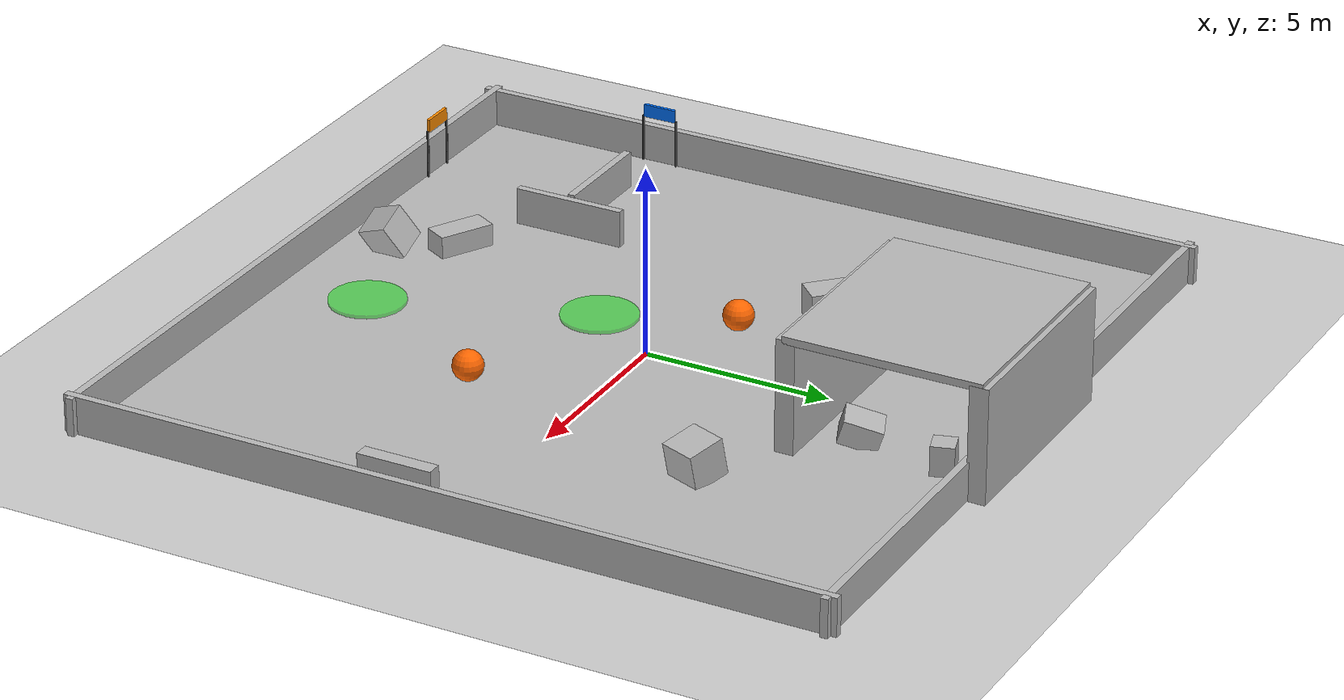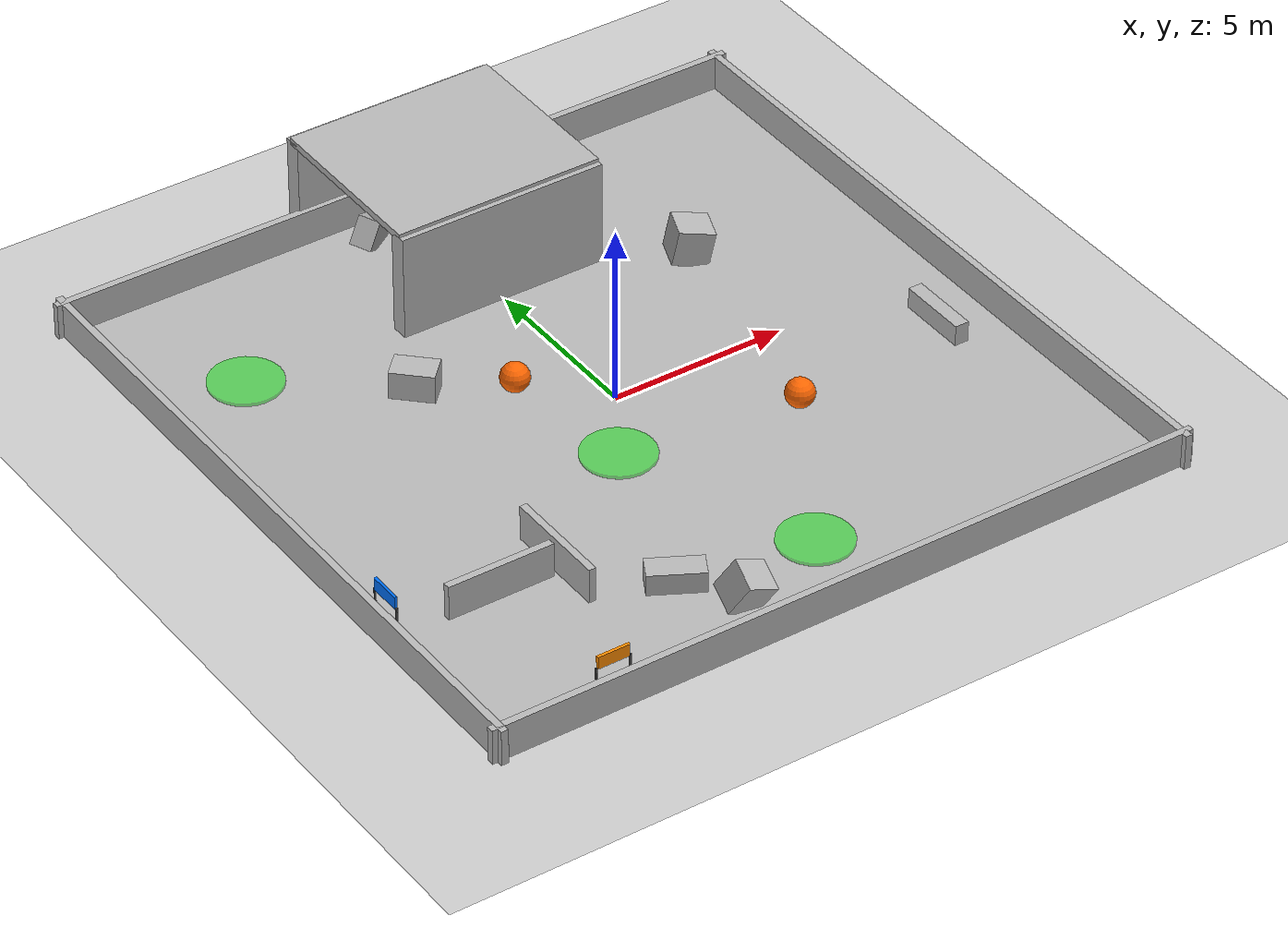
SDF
<sdf version="1.6">
 <world name="hazard_world">
  <physics type="ode">
   <real_time_update_rate>1000.0</real_time_update_rate>
   <max_step_size>0.001</max_step_size>
   <real_time_factor>0</real_time_factor>
   <ode><solver><type>quick</type><iters>70</iters><sor>1.3</sor></solver></ode>
  </physics>
  <scene>
   <ambient>0.4 0.2 0.1 1</ambient>
   <background>0.7 0.4 0.3 1</background>
   <shadows>false</shadows>
   <sky>
    <time>18.5</time>
    <sunrise>6.0</sunrise>
    <sunset>19.0</sunset>
    <clouds><speed>0.6</speed><humidity>0.5</humidity></clouds>
   </sky>
  </scene>
  <light name="sun" type="directional">
   <pose>0 0 10 0.8 0 0</pose>
   <diffuse>0.9 0.5 0.2 1</diffuse>
   <specular>0.2 0.2 0.2 1</specular>
   <direction>0 0 -1</direction>
   <cast_shadows>false</cast_shadows>
  </light>
  <light name="tunnel_lamp" type="point">
   <pose>0 7.8 2.95 0 0 0</pose>
   <diffuse>1.0 0.95 0.6 1</diffuse>
   <specular>0.4 0.4 0.4 1</specular>
   <attenuation>
    <range>8.0</range>
    <constant>0.3</constant>
    <linear>0.1</linear>
    <quadratic>0.05</quadratic>
   </attenuation>
   <cast_shadows>false</cast_shadows>
   <visualize>false</visualize>
  </light>
  <model name="outer_ground">
   <static>true</static>
   <link name="link">
    <collision name="collision">
     <geometry><plane><normal>0 0 1</normal><size>100 100</size></plane></geometry>
     <surface><friction><ode><mu>1.0</mu><mu2>1.0</mu2></ode></friction></surface>
    </collision>
    <visual name="visual">
     <cast_shadows>false</cast_shadows>
     <geometry><plane><normal>0 0 1</normal><size>100 100</size></plane></geometry>
     <material>
      <script>
       <uri>file:///home/hashie/catkin_ws/src/com760cw2_group6/media/materials/scripts</uri>
       <name>Pavement/Tile</name>
      </script>
     </material>
    </visual>
   </link>
  </model>
  <model name="cracked_ground">
   <static>true</static>
   <link name="link">
    <visual name="visual">
     <cast_shadows>false</cast_shadows>
     <pose>0 0 0.001 0 0 0</pose>
     <geometry><plane><normal>0 0 1</normal><size>20 20</size></plane></geometry>
     <material>
      <script>
       <uri>file:///home/hashie/catkin_ws/src/com760cw2_group6/media/materials/scripts</uri>
       <name>Apocalypse/GroundTexture</name>
      </script>
     </material>
    </visual>
   </link>
  </model>
  <model name="grid_border">
   <static>true</static>
   <link name="link">
    <collision name="n_c">
     <pose>0.0000 10.0 0.5 0 0 0</pose>
     <geometry><box><size>20.5000 0.2 1.0</size></box></geometry>
    </collision>
    <visual name="n_v">
     <pose>0.0000 10.0 0.5 0 0 0</pose>
     <cast_shadows>false</cast_shadows>
     <geometry><box><size>20.5000 0.2 1.0</size></box></geometry>
     <material>
      <script>
       <uri>file:///home/hashie/catkin_ws/src/com760cw2_group6/media/materials/scripts</uri>
       <name>Apocalypse/StoneTexture</name>
      </script>
     </material>
    </visual>
    <collision name="s_c">
     <pose>0.0000 -10.0 0.5 0 0 0</pose>
     <geometry><box><size>20.5000 0.2 1.0</size></box></geometry>
    </collision>
    <visual name="s_v">
     <pose>0.0000 -10.0 0.5 0 0 0</pose>
     <cast_shadows>false</cast_shadows>
     <geometry><box><size>20.5000 0.2 1.0</size></box></geometry>
     <material>
      <script>
       <uri>file:///home/hashie/catkin_ws/src/com760cw2_group6/media/materials/scripts</uri>
       <name>Apocalypse/StoneTexture</name>
      </script>
     </material>
    </visual>
    <collision name="e_c">
     <pose>10.0000 0.0 0.5 0 0 0</pose>
     <geometry><box><size>0.2000 20.5 1.0</size></box></geometry>
    </collision>
    <visual name="e_v">
     <pose>10.0000 0.0 0.5 0 0 0</pose>
     <cast_shadows>false</cast_shadows>
     <geometry><box><size>0.2000 20.5 1.0</size></box></geometry>
     <material>
      <script>
       <uri>file:///home/hashie/catkin_ws/src/com760cw2_group6/media/materials/scripts</uri>
       <name>Apocalypse/StoneTexture</name>
      </script>
     </material>
    </visual>
    <collision name="w_c">
     <pose>-10.0000 0.0 0.5 0 0 0</pose>
     <geometry><box><size>0.2000 20.5 1.0</size></box></geometry>
    </collision>
    <visual name="w_v">
     <pose>-10.0000 0.0 0.5 0 0 0</pose>
     <cast_shadows>false</cast_shadows>
     <geometry><box><size>0.2000 20.5 1.0</size></box></geometry>
     <material>
      <script>
       <uri>file:///home/hashie/catkin_ws/src/com760cw2_group6/media/materials/scripts</uri>
       <name>Apocalypse/StoneTexture</name>
      </script>
     </material>
    </visual>
   </link>
  </model>
  <model name="path_tunnel">
   <static>true</static>
   <pose>0.0 7.8 -0.2 0 0 0</pose>
   <link name="link">
    <collision name="wall_l">
     <pose>0 -2.5 1.6 0 0 0</pose>
     <geometry><box><size>6.0 0.5 3.2</size></box></geometry>
    </collision>
    <visual name="v_l">
     <cast_shadows>false</cast_shadows>
     <pose>0 -2.5 1.6 0 0 0</pose>
     <geometry><box><size>6.0 0.5 3.2</size></box></geometry>
     <material>
      <script>
       <uri>file:///home/hashie/catkin_ws/src/com760cw2_group6/media/materials/scripts</uri>
       <name>Apocalypse/StoneTexture</name>
      </script>
     </material>
    </visual>
    <collision name="wall_r">
     <pose>0 2.5 1.6 0 0 0</pose>
     <geometry><box><size>6.0 0.5 3.2</size></box></geometry>
    </collision>
    <visual name="v_r">
     <cast_shadows>false</cast_shadows>
     <pose>0 2.5 1.6 0 0 0</pose>
     <geometry><box><size>6.0 0.5 3.2</size></box></geometry>
     <material>
      <script>
       <uri>file:///home/hashie/catkin_ws/src/com760cw2_group6/media/materials/scripts</uri>
       <name>Apocalypse/StoneTexture</name>
      </script>
     </material>
    </visual>
    <collision name="roof">
     <pose>0 0 3.2 0 0 0</pose>
     <geometry><box><size>6.0 5.2 0.2</size></box></geometry>
    </collision>
    <visual name="v_roof">
     <cast_shadows>false</cast_shadows>
     <pose>0 0 3.2 0 0 0</pose>
     <geometry><box><size>6.0 5.2 0.2</size></box></geometry>
     <material>
      <script>
       <uri>file:///home/hashie/catkin_ws/src/com760cw2_group6/media/materials/scripts</uri>
       <name>Apocalypse/StoneTexture</name>
      </script>
     </material>
    </visual>
    <collision name="c_debris_1">
     <pose>-1.5 1.2 0.6 0.2 0.5 0.7</pose>
     <geometry><box><size>1.2 0.6 0.8</size></box></geometry>
     <surface><friction><ode><mu>100</mu><mu2>50</mu2></ode></friction></surface>
    </collision>
    <visual name="v_debris_1">
     <cast_shadows>false</cast_shadows>
     <pose>-1.5 1.2 0.6 0.2 0.5 0.7</pose>
     <geometry><box><size>1.2 0.6 0.8</size></box></geometry>
     <material>
      <script>
       <uri>file:///home/hashie/catkin_ws/src/com760cw2_group6/media/materials/scripts</uri>
       <name>Apocalypse/StoneTexture</name>
      </script>
     </material>
    </visual>
    <collision name="c_debris_2">
     <pose>1.5 -1.2 0.5 -0.3 0 0.4</pose>
     <geometry><box><size>1.0 1.0 0.6</size></box></geometry>
     <surface><friction><ode><mu>100</mu><mu2>50</mu2></ode></friction></surface>
    </collision>
    <visual name="v_debris_2">
     <cast_shadows>false</cast_shadows>
     <pose>1.5 -1.2 0.5 -0.3 0 0.4</pose>
     <geometry><box><size>1.0 1.0 0.6</size></box></geometry>
     <material>
      <script>
       <uri>file:///home/hashie/catkin_ws/src/com760cw2_group6/media/materials/scripts</uri>
       <name>Apocalypse/StoneTexture</name>
      </script>
     </material>
    </visual>
   </link>
  </model>
  <model name="random_stone_1">
   <static>true</static>
   <pose>-4.0 3.0 0.4 0.0 0.0 0.8</pose>
   <link name="link">
    <collision name="c">
     <geometry><box><size>0.8 1.2 0.8</size></box></geometry>
     <surface>
      <friction><ode><mu>100</mu><mu2>50</mu2></ode></friction>
      <contact><ode><kp>1e+06</kp><kd>1.0</kd></ode></contact>
     </surface>
    </collision>
    <visual name="v">
     <cast_shadows>false</cast_shadows>
     <geometry><box><size>0.8 1.2 0.8</size></box></geometry>
     <material>
      <script>
       <uri>file:///home/hashie/catkin_ws/src/com760cw2_group6/media/materials/scripts</uri>
       <name>Apocalypse/StoneTexture</name>
      </script>
     </material>
    </visual>
   </link>
  </model>
  <model name="random_stone_2">
   <static>true</static>
   <pose>5.0 4.0 0.5 0.2 0.0 1.2</pose>
   <link name="link">
    <collision name="c">
     <geometry><box><size>1.0 1.0 1.0</size></box></geometry>
     <surface>
      <friction><ode><mu>100</mu><mu2>50</mu2></ode></friction>
      <contact><ode><kp>1e+06</kp><kd>1.0</kd></ode></contact>
     </surface>
    </collision>
    <visual name="v">
     <cast_shadows>false</cast_shadows>
     <geometry><box><size>1.0 1.0 1.0</size></box></geometry>
     <material>
      <script>
       <uri>file:///home/hashie/catkin_ws/src/com760cw2_group6/media/materials/scripts</uri>
       <name>Apocalypse/StoneTexture</name>
      </script>
     </material>
    </visual>
   </link>
  </model>
  <model name="random_stone_3">
   <static>true</static>
   <pose>-3.0 -7.0 0.3 0.0 0.0 -0.5</pose>
   <link name="link">
    <collision name="c">
     <geometry><box><size>1.5 0.7 0.6</size></box></geometry>
     <surface>
      <friction><ode><mu>100</mu><mu2>50</mu2></ode></friction>
      <contact><ode><kp>1e+06</kp><kd>1.0</kd></ode></contact>
     </surface>
    </collision>
    <visual name="v">
     <cast_shadows>false</cast_shadows>
     <geometry><box><size>1.5 0.7 0.6</size></box></geometry>
     <material>
      <script>
       <uri>file:///home/hashie/catkin_ws/src/com760cw2_group6/media/materials/scripts</uri>
       <name>Apocalypse/StoneTexture</name>
      </script>
     </material>
    </visual>
   </link>
  </model>
  <model name="random_stone_4">
   <static>true</static>
   <pose>2.0 9.0 0.4 0.0 0.0 0.3</pose>
   <link name="link">
    <collision name="c">
     <geometry><box><size>0.6 0.6 0.8</size></box></geometry>
     <surface>
      <friction><ode><mu>100</mu><mu2>50</mu2></ode></friction>
      <contact><ode><kp>1e+06</kp><kd>1.0</kd></ode></contact>
     </surface>
    </collision>
    <visual name="v">
     <cast_shadows>false</cast_shadows>
     <geometry><box><size>0.6 0.6 0.8</size></box></geometry>
     <material>
      <script>
       <uri>file:///home/hashie/catkin_ws/src/com760cw2_group6/media/materials/scripts</uri>
       <name>Apocalypse/StoneTexture</name>
      </script>
     </material>
    </visual>
   </link>
  </model>
  <model name="random_stone_5">
   <static>true</static>
   <pose>-2.0 -8.5 0.5 0.4 0.4 0.0</pose>
   <link name="link">
    <collision name="c">
     <geometry><box><size>0.9 0.9 1.0</size></box></geometry>
     <surface>
      <friction><ode><mu>100</mu><mu2>50</mu2></ode></friction>
      <contact><ode><kp>1e+06</kp><kd>1.0</kd></ode></contact>
     </surface>
    </collision>
    <visual name="v">
     <cast_shadows>false</cast_shadows>
     <geometry><box><size>0.9 0.9 1.0</size></box></geometry>
     <material>
      <script>
       <uri>file:///home/hashie/catkin_ws/src/com760cw2_group6/media/materials/scripts</uri>
       <name>Apocalypse/StoneTexture</name>
      </script>
     </material>
    </visual>
   </link>
  </model>
  <model name="random_stone_6">
   <static>true</static>
   <pose>8.5 -2.0 0.3 0.0 0.0 1.57</pose>
   <link name="link">
    <collision name="c">
     <geometry><box><size>2.0 0.4 0.6</size></box></geometry>
     <surface>
      <friction><ode><mu>100</mu><mu2>50</mu2></ode></friction>
      <contact><ode><kp>1e+06</kp><kd>1.0</kd></ode></contact>
     </surface>
    </collision>
    <visual name="v">
     <cast_shadows>false</cast_shadows>
     <geometry><box><size>2.0 0.4 0.6</size></box></geometry>
     <material>
      <script>
       <uri>file:///home/hashie/catkin_ws/src/com760cw2_group6/media/materials/scripts</uri>
       <name>Apocalypse/StoneTexture</name>
      </script>
     </material>
    </visual>
   </link>
  </model>
  <model name="entrance_sign_bot0">
   <static>true</static>
   <pose>-9.8500 -4.9220 0 0 0 0</pose>
   <link name="link">
    <visual name="post_l">
     <pose>0 -0.480 0.65 0 0 0</pose>
     <cast_shadows>false</cast_shadows>
     <geometry><cylinder><radius>0.03</radius><length>1.3</length></cylinder></geometry>
     <material><ambient>0.25 0.25 0.25 1</ambient><diffuse>0.25 0.25 0.25 1</diffuse></material>
    </visual>
    <visual name="post_r">
     <pose>0 0.480 0.65 0 0 0</pose>
     <cast_shadows>false</cast_shadows>
     <geometry><cylinder><radius>0.03</radius><length>1.3</length></cylinder></geometry>
     <material><ambient>0.25 0.25 0.25 1</ambient><diffuse>0.25 0.25 0.25 1</diffuse></material>
    </visual>
    <visual name="board">
     <pose>0 0 1.45 0 0 0</pose>
     <cast_shadows>false</cast_shadows>
     <geometry><box><size>0.08 0.9 0.35</size></box></geometry>
     <material>
      <ambient>0.00 0.45 1.00 1</ambient>
      <diffuse>0.00 0.45 1.00 1</diffuse>
      <emissive>0.00 0.11 0.25 1</emissive>
     </material>
    </visual>
   </link>
  </model>
  <model name="entrance_sign_bot1">
   <static>true</static>
   <pose>-6.7194 -9.8500 0 0 0 0</pose>
   <link name="link">
    <visual name="post_l">
     <pose>-0.480 0 0.65 0 0 0</pose>
     <cast_shadows>false</cast_shadows>
     <geometry><cylinder><radius>0.03</radius><length>1.3</length></cylinder></geometry>
     <material><ambient>0.25 0.25 0.25 1</ambient><diffuse>0.25 0.25 0.25 1</diffuse></material>
    </visual>
    <visual name="post_r">
     <pose>0.480 0 0.65 0 0 0</pose>
     <cast_shadows>false</cast_shadows>
     <geometry><cylinder><radius>0.03</radius><length>1.3</length></cylinder></geometry>
     <material><ambient>0.25 0.25 0.25 1</ambient><diffuse>0.25 0.25 0.25 1</diffuse></material>
    </visual>
    <visual name="board">
     <pose>0 0 1.45 0 0 0</pose>
     <cast_shadows>false</cast_shadows>
     <geometry><box><size>0.9 0.08 0.35</size></box></geometry>
     <material>
      <ambient>1.00 0.55 0.00 1</ambient>
      <diffuse>1.00 0.55 0.00 1</diffuse>
      <emissive>0.25 0.14 0.00 1</emissive>
     </material>
    </visual>
   </link>
  </model>
  <model name="fire_1">
   <static>true</static>
   <pose>-2.00 1.50 0.55 0 0 0</pose>
   <link name="link">
    <visual name="fireball_vis">
     <cast_shadows>false</cast_shadows>
     <geometry><sphere><radius>0.40</radius></sphere></geometry>
     <material>
      <ambient>1.0 0.5 0.0 1</ambient>
      <diffuse>1.0 0.4 0.0 1</diffuse>
      <emissive>0.9 0.3 0.0 1</emissive>
      <script>
       <uri>file:///home/hashie/catkin_ws/src/com760cw2_group6/media/materials/scripts</uri>
       <name>Apocalypse/FireballTexture</name>
      </script>
     </material>
    </visual>
    <collision name="fireball_col">
     <geometry><sphere><radius>0.40</radius></sphere></geometry>
     <surface><contact><collide_bitmask>0x01</collide_bitmask></contact></surface>
    </collision>
    <sensor name="fire_1_contact" type="contact">
     <always_on>true</always_on>
     <update_rate>20</update_rate>
     <contact><collision>link::fireball_col</collision></contact>
     <plugin name="fire_1_plugin" filename="libgazebo_ros_bumper.so">
      <bumperTopicName>/fire_1/contact</bumperTopicName>
      <frameName>world</frameName>
     </plugin>
    </sensor>
   </link>
  </model>
  <light name="fire_1_glow" type="point">
   <pose>-2.00 1.50 0.55 0 0 0</pose>
   <diffuse>1.0 0.45 0.05 1</diffuse>
   <specular>0.4 0.15 0.0 1</specular>
   <attenuation>
    <range>6.0</range>
    <constant>0.25</constant>
    <linear>0.12</linear>
    <quadratic>0.04</quadratic>
   </attenuation>
   <cast_shadows>false</cast_shadows>
   <visualize>false</visualize>
  </light>
  <model name="fire_2">
   <static>true</static>
   <pose>3.50 -3.00 0.55 0 0 0</pose>
   <link name="link">
    <visual name="fireball_vis">
     <cast_shadows>false</cast_shadows>
     <geometry><sphere><radius>0.40</radius></sphere></geometry>
     <material>
      <ambient>1.0 0.5 0.0 1</ambient>
      <diffuse>1.0 0.4 0.0 1</diffuse>
      <emissive>0.9 0.3 0.0 1</emissive>
      <script>
       <uri>file:///home/hashie/catkin_ws/src/com760cw2_group6/media/materials/scripts</uri>
       <name>Apocalypse/FireballTexture</name>
      </script>
     </material>
    </visual>
    <collision name="fireball_col">
     <geometry><sphere><radius>0.40</radius></sphere></geometry>
     <surface><contact><collide_bitmask>0x01</collide_bitmask></contact></surface>
    </collision>
    <sensor name="fire_2_contact" type="contact">
     <always_on>true</always_on>
     <update_rate>20</update_rate>
     <contact><collision>link::fireball_col</collision></contact>
     <plugin name="fire_2_plugin" filename="libgazebo_ros_bumper.so">
      <bumperTopicName>/fire_2/contact</bumperTopicName>
      <frameName>world</frameName>
     </plugin>
    </sensor>
   </link>
  </model>
  <light name="fire_2_glow" type="point">
   <pose>3.50 -3.00 0.55 0 0 0</pose>
   <diffuse>1.0 0.45 0.05 1</diffuse>
   <specular>0.4 0.15 0.0 1</specular>
   <attenuation>
    <range>6.0</range>
    <constant>0.25</constant>
    <linear>0.12</linear>
    <quadratic>0.04</quadratic>
   </attenuation>
   <cast_shadows>false</cast_shadows>
   <visualize>false</visualize>
  </light>
  <model name="entry_obstacle_bot0">
   <static>true</static>
   <pose>-5.0000 -4.9220 0.50 0 0 0</pose>
   <link name="link">
    <collision name="c">
     <geometry><box><size>0.20 3.00 1.00</size></box></geometry>
     <surface><friction><ode><mu>100</mu><mu2>50</mu2></ode></friction></surface>
    </collision>
    <visual name="v">
     <cast_shadows>false</cast_shadows>
     <geometry><box><size>0.20 3.00 1.00</size></box></geometry>
     <material>
      <script>
       <uri>file:///home/hashie/catkin_ws/src/com760cw2_group6/media/materials/scripts</uri>
       <name>Apocalypse/StoneTexture</name>
      </script>
     </material>
    </visual>
   </link>
  </model>
  <model name="entry_obstacle_bot1">
   <static>true</static>
   <pose>-6.7194 -5.0000 0.50 0 0 0</pose>
   <link name="link">
    <collision name="c">
     <geometry><box><size>3.00 0.20 1.00</size></box></geometry>
     <surface><friction><ode><mu>100</mu><mu2>50</mu2></ode></friction></surface>
    </collision>
    <visual name="v">
     <cast_shadows>false</cast_shadows>
     <geometry><box><size>3.00 0.20 1.00</size></box></geometry>
     <material>
      <script>
       <uri>file:///home/hashie/catkin_ws/src/com760cw2_group6/media/materials/scripts</uri>
       <name>Apocalypse/StoneTexture</name>
      </script>
     </material>
    </visual>
   </link>
  </model>
  <model name="gas_zone_1">
   <static>true</static>
   <pose>0.77 -7.49 0.05 0 0 0</pose>
   <link name="link">
    <visual name="v">
     <cast_shadows>false</cast_shadows>
     <geometry><cylinder><radius>1.0</radius><length>0.1</length></cylinder></geometry>
     <material>
      <ambient>0 0.8 0 0.5</ambient>
      <diffuse>0 0.9 0 0.5</diffuse>
      <emissive>0 0.4 0 1</emissive>
     </material>
    </visual>
    <collision name="c">
     <geometry><cylinder><radius>1.0</radius><length>0.1</length></cylinder></geometry>
     <surface>
      <contact><collide_bitmask>0x0000</collide_bitmask></contact>
      <friction><ode><mu>0</mu><mu2>0</mu2></ode></friction>
     </surface>
    </collision>
    <sensor name="contact_1" type="contact">
     <always_on>true</always_on>
     <update_rate>20</update_rate>
     <contact><collision>link::c</collision></contact>
     <plugin name="bumper_1" filename="libgazebo_ros_bumper.so">
      <bumperTopicName>/gas_1/contact</bumperTopicName>
      <frameName>world</frameName>
     </plugin>
    </sensor>
   </link>
  </model>
  <model name="gas_zone_2">
   <static>true</static>
   <pose>-7.31 5.67 0.05 0 0 0</pose>
   <link name="link">
    <visual name="v">
     <cast_shadows>false</cast_shadows>
     <geometry><cylinder><radius>1.0</radius><length>0.1</length></cylinder></geometry>
     <material>
      <ambient>0 0.8 0 0.5</ambient>
      <diffuse>0 0.9 0 0.5</diffuse>
      <emissive>0 0.4 0 1</emissive>
     </material>
    </visual>
    <collision name="c">
     <geometry><cylinder><radius>1.0</radius><length>0.1</length></cylinder></geometry>
     <surface>
      <contact><collide_bitmask>0x0000</collide_bitmask></contact>
      <friction><ode><mu>0</mu><mu2>0</mu2></ode></friction>
     </surface>
    </collision>
    <sensor name="contact_2" type="contact">
     <always_on>true</always_on>
     <update_rate>20</update_rate>
     <contact><collision>link::c</collision></contact>
     <plugin name="bumper_2" filename="libgazebo_ros_bumper.so">
      <bumperTopicName>/gas_2/contact</bumperTopicName>
      <frameName>world</frameName>
     </plugin>
    </sensor>
   </link>
  </model>
  <model name="gas_zone_3">
   <static>true</static>
   <pose>-1.25 -1.99 0.05 0 0 0</pose>
   <link name="link">
    <visual name="v">
     <cast_shadows>false</cast_shadows>
     <geometry><cylinder><radius>1.0</radius><length>0.1</length></cylinder></geometry>
     <material>
      <ambient>0 0.8 0 0.5</ambient>
      <diffuse>0 0.9 0 0.5</diffuse>
      <emissive>0 0.4 0 1</emissive>
     </material>
    </visual>
    <collision name="c">
     <geometry><cylinder><radius>1.0</radius><length>0.1</length></cylinder></geometry>
     <surface>
      <contact><collide_bitmask>0x0000</collide_bitmask></contact>
      <friction><ode><mu>0</mu><mu2>0</mu2></ode></friction>
     </surface>
    </collision>
    <sensor name="contact_3" type="contact">
     <always_on>true</always_on>
     <update_rate>20</update_rate>
     <contact><collision>link::c</collision></contact>
     <plugin name="bumper_3" filename="libgazebo_ros_bumper.so">
      <bumperTopicName>/gas_3/contact</bumperTopicName>
      <frameName>world</frameName>
     </plugin>
    </sensor>
   </link>
  </model>
  <plugin name="gazebo_ros_state" filename="libgazebo_ros_state.so">
   <ros><namespace>/hazard_world</namespace></ros>
   <update_rate>10.0</update_rate>
  </plugin>
 </world>
</sdf>
